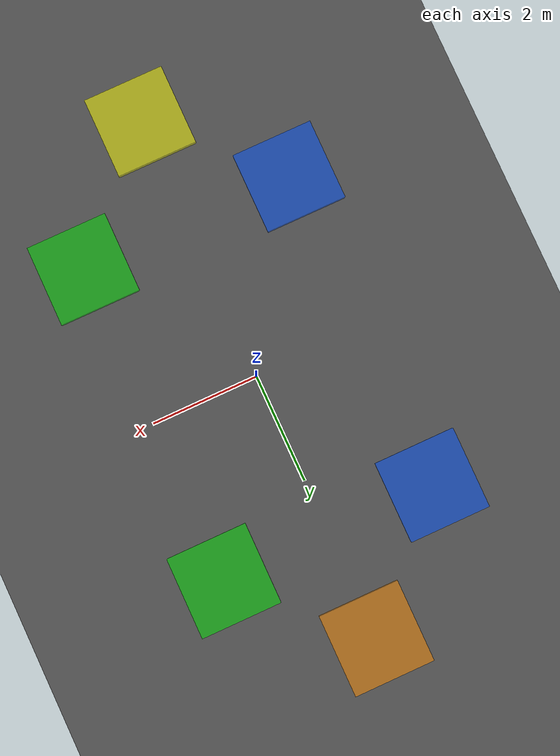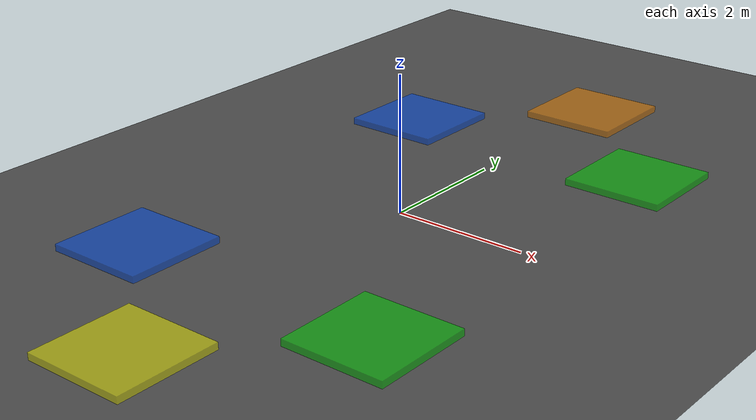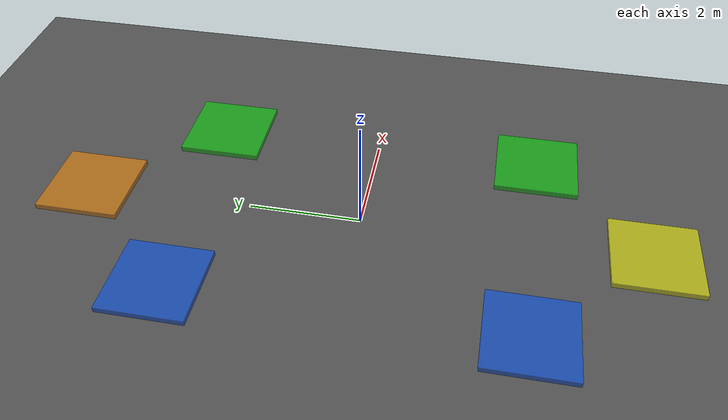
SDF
<?xml version="1.0" ?>
<sdf version="1.9">
  <world name="factory">

    <physics name="1ms" type="ignored">
      <max_step_size>0.001</max_step_size>
      <real_time_factor>1.0</real_time_factor>
    </physics>

    <plugin filename="gz-sim-physics-system" name="gz::sim::systems::Physics"/>
    <plugin filename="gz-sim-scene-broadcaster-system" name="gz::sim::systems::SceneBroadcaster"/>
    <plugin filename="gz-sim-user-commands-system" name="gz::sim::systems::UserCommands"/>
    <plugin filename="gz-sim-sensors-system" name="gz::sim::systems::Sensors">
      <render_engine>ogre2</render_engine>
    </plugin>

    <light name="sun" type="directional">
      <cast_shadows>true</cast_shadows>
      <pose>0 0 10 0 0 0</pose>
      <diffuse>1 1 1 1</diffuse>
    </light>

    <model name="ground_plane">
      <static>true</static>
      <link name="link">
        <collision name="collision">
          <geometry><plane><normal>0 0 1</normal><size>30 30</size></plane></geometry>
        </collision>
        <visual name="visual">
          <geometry><plane><normal>0 0 1</normal><size>30 30</size></plane></geometry>
          <material><ambient>0.3 0.3 0.3 1</ambient></material>
        </visual>
      </link>
    </model>

    <!-- Zone markers: Assembly-A (green) -->
    <model name="zone_assembly_a">
      <static>true</static>
      <pose>2 3 0.05 0 0 0</pose>
      <link name="link">
        <visual name="visual">
          <geometry><box><size>1.5 1.5 0.1</size></box></geometry>
          <material><ambient>0 0.8 0 0.6</ambient></material>
        </visual>
      </link>
    </model>

    <!-- Assembly-B -->
    <model name="zone_assembly_b">
      <static>true</static>
      <pose>2 -3 0.05 0 0 0</pose>
      <link name="link">
        <visual name="visual">
          <geometry><box><size>1.5 1.5 0.1</size></box></geometry>
          <material><ambient>0 0.8 0 0.6</ambient></material>
        </visual>
      </link>
    </model>

    <!-- Storage-Bay (blue) -->
    <model name="zone_storage_bay">
      <static>true</static>
      <pose>-2 3 0.05 0 0 0</pose>
      <link name="link">
        <visual name="visual">
          <geometry><box><size>1.5 1.5 0.1</size></box></geometry>
          <material><ambient>0 0.3 0.9 0.6</ambient></material>
        </visual>
      </link>
    </model>

    <!-- Processing-Unit (blue) -->
    <model name="zone_processing_unit">
      <static>true</static>
      <pose>-2 -3 0.05 0 0 0</pose>
      <link name="link">
        <visual name="visual">
          <geometry><box><size>1.5 1.5 0.1</size></box></geometry>
          <material><ambient>0 0.3 0.9 0.6</ambient></material>
        </visual>
      </link>
    </model>

    <!-- Loading-Dock (orange) -->
    <model name="zone_loading_dock">
      <static>true</static>
      <pose>0 5 0.05 0 0 0</pose>
      <link name="link">
        <visual name="visual">
          <geometry><box><size>1.5 1.5 0.1</size></box></geometry>
          <material><ambient>0.9 0.5 0 0.6</ambient></material>
        </visual>
      </link>
    </model>

    <!-- Charging-Bay (yellow) -->
    <model name="zone_charging_bay">
      <static>true</static>
      <pose>0 -5 0.05 0 0 0</pose>
      <link name="link">
        <visual name="visual">
          <geometry><box><size>1.5 1.5 0.1</size></box></geometry>
          <material><ambient>0.9 0.9 0 0.6</ambient></material>
        </visual>
      </link>
    </model>

  </world>
</sdf>
